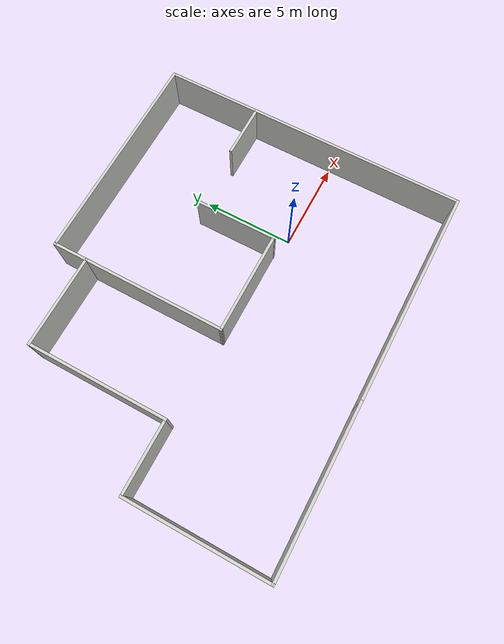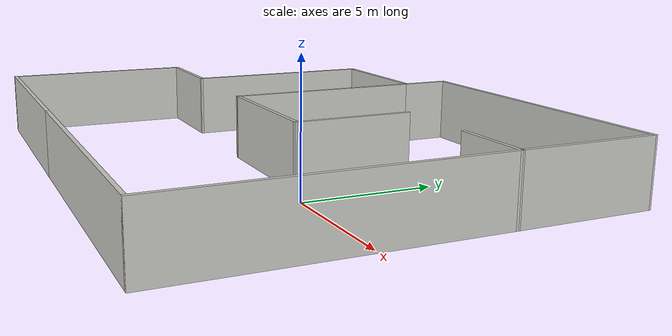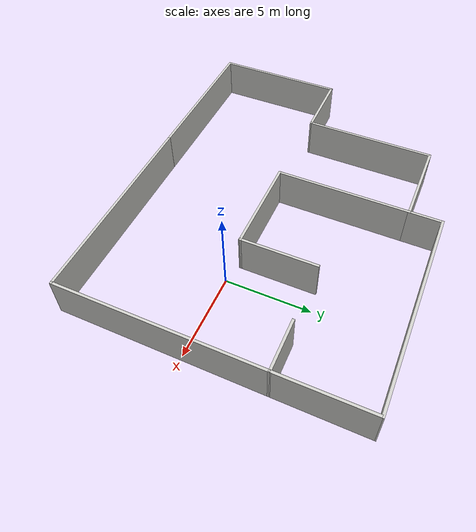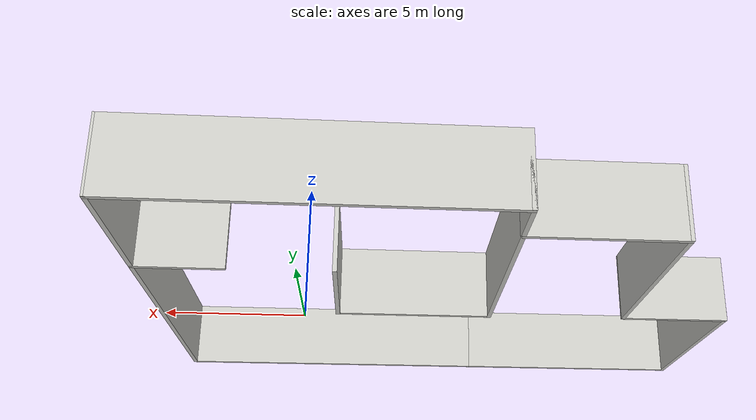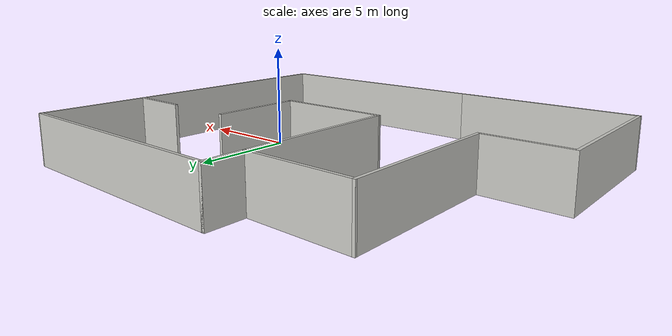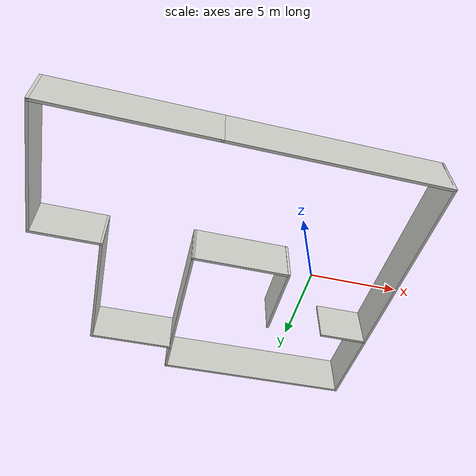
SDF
<?xml version='1.0'?>
<sdf version='1.7'>
  <model name='map1'>
    <pose>-5.20574 1.44535 0 0 -0 0</pose>
    <link name='Wall_17'>
      <collision name='Wall_17_Collision'>
        <geometry>
          <box>
            <size>12 0.15 2.5</size>
          </box>
        </geometry>
        <pose>0 0 1.25 0 -0 0</pose>
      </collision>
      <visual name='Wall_17_Visual'>
        <pose>0 0 1.25 0 -0 0</pose>
        <geometry>
          <box>
            <size>12 0.15 2.5</size>
          </box>
        </geometry>
        <material>
          <script>
            <uri>file://media/materials/scripts/gazebo.material</uri>
            <name>Gazebo/CeilingTiled</name>
          </script>
          <ambient>0.435294 0.796078 0.67451 1</ambient>
        </material>
        <meta>
          <layer>0</layer>
        </meta>
      </visual>
      <pose>4.42491 -8.52904 0 0 -0 0</pose>
    </link>
    <link name='Wall_18'>
      <collision name='Wall_18_Collision'>
        <geometry>
          <box>
            <size>12 0.15 2.5</size>
          </box>
        </geometry>
        <pose>0 0 1.25 0 -0 0</pose>
      </collision>
      <visual name='Wall_18_Visual'>
        <pose>0 0 1.25 0 -0 0</pose>
        <geometry>
          <box>
            <size>12 0.15 2.5</size>
          </box>
        </geometry>
        <material>
          <script>
            <uri>file://media/materials/scripts/gazebo.material</uri>
            <name>Gazebo/CeilingTiled</name>
          </script>
          <ambient>0.435294 0.796078 0.67451 1</ambient>
        </material>
        <meta>
          <layer>0</layer>
        </meta>
      </visual>
      <pose>10.3499 -2.60404 0 0 -0 1.5708</pose>
    </link>
    <link name='Wall_20'>
      <collision name='Wall_20_Collision'>
        <geometry>
          <box>
            <size>4.54601 0.15 2.5</size>
          </box>
        </geometry>
        <pose>0 0 1.25 0 -0 0</pose>
      </collision>
      <visual name='Wall_20_Visual'>
        <pose>0 0 1.25 0 -0 0</pose>
        <geometry>
          <box>
            <size>4.54601 0.15 2.5</size>
          </box>
        </geometry>
        <material>
          <script>
            <uri>file://media/materials/scripts/gazebo.material</uri>
            <name>Gazebo/CeilingTiled</name>
          </script>
          <ambient>0.435294 0.796078 0.67451 1</ambient>
        </material>
        <meta>
          <layer>0</layer>
        </meta>
      </visual>
      <pose>4.00566 1.12296 0 0 -0 -1.56818</pose>
    </link>
    <link name='Wall_21'>
      <collision name='Wall_21_Collision'>
        <geometry>
          <box>
            <size>5.67396 0.15 2.5</size>
          </box>
        </geometry>
        <pose>0 0 1.25 0 -0 0</pose>
      </collision>
      <visual name='Wall_21_Visual'>
        <pose>0 0 1.25 0 -0 0</pose>
        <geometry>
          <box>
            <size>5.67396 0.15 2.5</size>
          </box>
        </geometry>
        <material>
          <script>
            <uri>file://media/materials/scripts/gazebo.material</uri>
            <name>Gazebo/CeilingTiled</name>
          </script>
          <ambient>0.435294 0.796078 0.67451 1</ambient>
        </material>
        <meta>
          <layer>0</layer>
        </meta>
      </visual>
      <pose>1.24943 -1.06734 0 0 -0 -3.14022</pose>
    </link>
    <link name='Wall_28'>
      <collision name='Wall_28_Collision'>
        <geometry>
          <box>
            <size>9 0.15 2.5</size>
          </box>
        </geometry>
        <pose>0 0 1.25 0 -0 0</pose>
      </collision>
      <visual name='Wall_28_Visual'>
        <pose>0 0 1.25 0 -0 0</pose>
        <geometry>
          <box>
            <size>9 0.15 2.5</size>
          </box>
        </geometry>
        <material>
          <script>
            <uri>file://media/materials/scripts/gazebo.material</uri>
            <name>Gazebo/CeilingTiled</name>
          </script>
          <ambient>0.435294 0.796078 0.67451 1</ambient>
        </material>
        <meta>
          <layer>0</layer>
        </meta>
      </visual>
      <pose>-5.92509 -8.52904 0 0 -0 3.14159</pose>
    </link>
    <link name='Wall_29'>
      <collision name='Wall_29_Collision'>
        <geometry>
          <box>
            <size>7.75 0.15 2.5</size>
          </box>
        </geometry>
        <pose>0 0 1.25 0 -0 0</pose>
      </collision>
      <visual name='Wall_29_Visual'>
        <pose>0 0 1.25 0 -0 0</pose>
        <geometry>
          <box>
            <size>7.75 0.15 2.5</size>
          </box>
        </geometry>
        <material>
          <script>
            <uri>file://media/materials/scripts/gazebo.material</uri>
            <name>Gazebo/CeilingTiled</name>
          </script>
          <ambient>0.435294 0.796078 0.67451 1</ambient>
        </material>
        <meta>
          <layer>0</layer>
        </meta>
      </visual>
      <pose>-10.3501 -4.72904 0 0 -0 1.5708</pose>
    </link>
    <link name='Wall_30'>
      <collision name='Wall_30_Collision'>
        <geometry>
          <box>
            <size>4 0.15 2.5</size>
          </box>
        </geometry>
        <pose>0 0 1.25 0 -0 0</pose>
      </collision>
      <visual name='Wall_30_Visual'>
        <pose>0 0 1.25 0 -0 0</pose>
        <geometry>
          <box>
            <size>4 0.15 2.5</size>
          </box>
        </geometry>
        <material>
          <script>
            <uri>file://media/materials/scripts/gazebo.material</uri>
            <name>Gazebo/CeilingTiled</name>
          </script>
          <ambient>0.435294 0.796078 0.67451 1</ambient>
        </material>
        <meta>
          <layer>0</layer>
        </meta>
      </visual>
      <pose>-8.42509 -0.929037 0 0 -0 0</pose>
    </link>
    <link name='Wall_31'>
      <collision name='Wall_31_Collision'>
        <geometry>
          <box>
            <size>7.75772 0.15 2.5</size>
          </box>
        </geometry>
        <pose>0 0 1.25 0 -0 0</pose>
      </collision>
      <visual name='Wall_31_Visual'>
        <pose>0 0 1.25 0 -0 0</pose>
        <geometry>
          <box>
            <size>7.75772 0.15 2.5</size>
          </box>
        </geometry>
        <material>
          <script>
            <uri>file://media/materials/scripts/gazebo.material</uri>
            <name>Gazebo/CeilingTiled</name>
          </script>
          <ambient>0.435294 0.796078 0.67451 1</ambient>
        </material>
        <meta>
          <layer>0</layer>
        </meta>
      </visual>
      <pose>-6.49442 2.87474 0 0 -0 1.5693</pose>
    </link>
    <link name='Wall_32'>
      <collision name='Wall_32_Collision'>
        <geometry>
          <box>
            <size>5.1 0.15 2.5</size>
          </box>
        </geometry>
        <pose>0 0 1.25 0 -0 0</pose>
      </collision>
      <visual name='Wall_32_Visual'>
        <pose>0 0 1.25 0 -0 0</pose>
        <geometry>
          <box>
            <size>5.1 0.15 2.5</size>
          </box>
        </geometry>
        <material>
          <script>
            <uri>file://media/materials/scripts/gazebo.material</uri>
            <name>Gazebo/CeilingTiled</name>
          </script>
          <ambient>0.435294 0.796078 0.67451 1</ambient>
        </material>
        <meta>
          <layer>0</layer>
        </meta>
      </visual>
      <pose>-4.01375 6.67852 0 0 -0 0</pose>
    </link>
    <link name='Wall_34'>
      <collision name='Wall_34_Collision'>
        <geometry>
          <box>
            <size>7.9 0.15 2.5</size>
          </box>
        </geometry>
        <pose>0 0 1.25 0 -0 0</pose>
      </collision>
      <visual name='Wall_34_Visual'>
        <pose>0 0 1.25 0 -0 0</pose>
        <geometry>
          <box>
            <size>7.9 0.15 2.5</size>
          </box>
        </geometry>
        <material>
          <script>
            <uri>file://media/materials/scripts/gazebo.material</uri>
            <name>Gazebo/CeilingTiled</name>
          </script>
          <ambient>0.435294 0.796078 0.67451 1</ambient>
        </material>
        <meta>
          <layer>0</layer>
        </meta>
      </visual>
      <pose>-1.51255 2.80386 0 0 -0 1.5708</pose>
    </link>
    <link name='Wall_36'>
      <collision name='Wall_36_Collision'>
        <geometry>
          <box>
            <size>2 0.15 2.5</size>
          </box>
        </geometry>
        <pose>0 0 1.25 0 -0 0</pose>
      </collision>
      <visual name='Wall_36_Visual'>
        <pose>0 0 1.25 0 -0 0</pose>
        <geometry>
          <box>
            <size>2 0.15 2.5</size>
          </box>
        </geometry>
        <material>
          <script>
            <uri>file://media/materials/scripts/gazebo.material</uri>
            <name>Gazebo/CeilingTiled</name>
          </script>
          <ambient>0.435294 0.796078 0.67451 1</ambient>
        </material>
        <meta>
          <layer>0</layer>
        </meta>
      </visual>
      <pose>-1.51255 7.60386 0 0 -0 1.5708</pose>
    </link>
    <link name='Wall_37'>
      <collision name='Wall_37_Collision'>
        <geometry>
          <box>
            <size>12 0.15 2.5</size>
          </box>
        </geometry>
        <pose>0 0 1.25 0 -0 0</pose>
      </collision>
      <visual name='Wall_37_Visual'>
        <pose>0 0 1.25 0 -0 0</pose>
        <geometry>
          <box>
            <size>12 0.15 2.5</size>
          </box>
        </geometry>
        <material>
          <script>
            <uri>file://media/materials/scripts/gazebo.material</uri>
            <name>Gazebo/CeilingTiled</name>
          </script>
          <ambient>0.435294 0.796078 0.67451 1</ambient>
        </material>
        <meta>
          <layer>0</layer>
        </meta>
      </visual>
      <pose>4.41245 8.52886 0 0 -0 0</pose>
    </link>
    <link name='Wall_38'>
      <collision name='Wall_38_Collision'>
        <geometry>
          <box>
            <size>5.35791 0.15 2.5</size>
          </box>
        </geometry>
        <pose>0 0 1.25 0 -0 0</pose>
      </collision>
      <visual name='Wall_38_Visual'>
        <pose>0 0 1.25 0 -0 0</pose>
        <geometry>
          <box>
            <size>5.35791 0.15 2.5</size>
          </box>
        </geometry>
        <material>
          <script>
            <uri>file://media/materials/scripts/gazebo.material</uri>
            <name>Gazebo/CeilingTiled</name>
          </script>
          <ambient>0.435294 0.796078 0.67451 1</ambient>
        </material>
        <meta>
          <layer>0</layer>
        </meta>
      </visual>
      <pose>10.3437 5.92491 0 0 -0 -1.5684</pose>
    </link>
    <link name='Wall_39'>
      <collision name='Wall_39_Collision'>
        <geometry>
          <box>
            <size>3 0.15 2.5</size>
          </box>
        </geometry>
        <pose>0 0 1.25 0 -0 0</pose>
      </collision>
      <visual name='Wall_39_Visual'>
        <pose>0 0 1.25 0 -0 0</pose>
        <geometry>
          <box>
            <size>3 0.15 2.5</size>
          </box>
        </geometry>
        <material>
          <script>
            <uri>file://media/materials/scripts/gazebo.material</uri>
            <name>Gazebo/CeilingTiled</name>
          </script>
          <ambient>0.435294 0.796078 0.67451 1</ambient>
        </material>
        <meta>
          <layer>0</layer>
        </meta>
      </visual>
      <pose>8.92491 3.32096 0 0 -0 3.14159</pose>
    </link>
    <static>1</static>
  </model>
</sdf>
